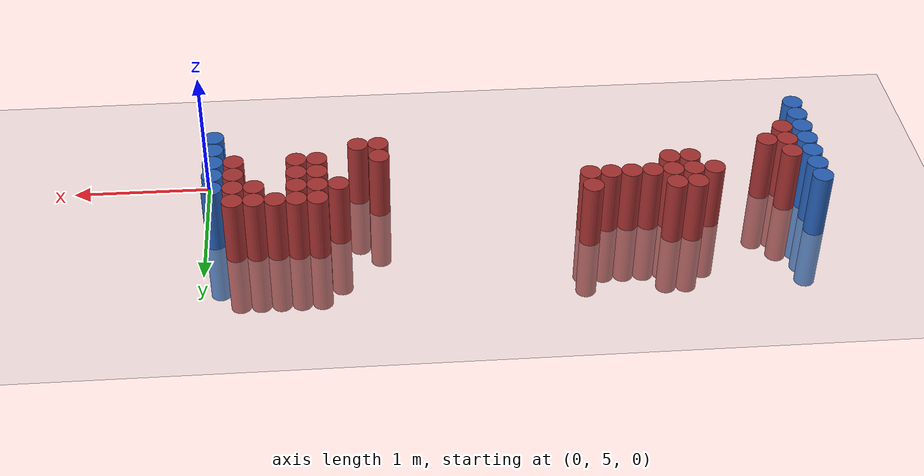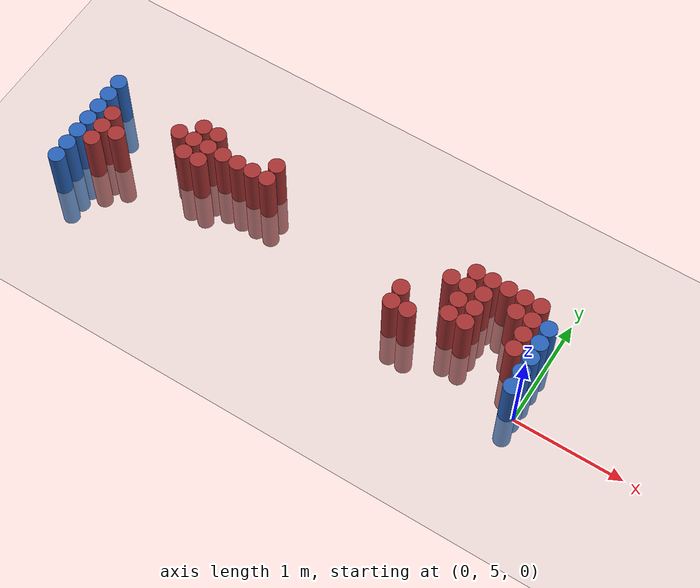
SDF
<sdf version="1.6">
 <world name="default">
  <model name="ground_plane">
   <static>1</static>
   <link name="link">
    <collision name="collision">
     <geometry><plane><normal>0 0 1</normal><size>100 100</size></plane></geometry>
     <surface><friction><ode><mu>100</mu><mu2>50</mu2></ode></friction></surface>
    </collision>
    <visual name="visual">
     <cast_shadows>0</cast_shadows>
     <geometry><plane><normal>0 0 1</normal><size>100 100</size></plane></geometry>
     <material>
      <script><uri>file://media/materials/scripts/gazebo.material</uri><name>Gazebo/Grey</name></script>
     </material>
    </visual>
   </link>
  </model>
  <model name="unit_cylinder_93">
   <static>1</static>
   <pose>-4.425000 4.875000 0.000000 0.000000 0.000000 0.000000</pose>
   <link name="link">
    <inertial>
     <mass>1</mass>
     <inertia><ixx>0.145833</ixx><ixy>0</ixy><ixz>0</ixz><iyy>0.145833</iyy><iyz>0</iyz><izz>0.125</izz></inertia>
    </inertial>
    <collision name="collision">
     <geometry><cylinder><radius>0.075000</radius><length>1</length></cylinder></geometry>
    </collision>
    <visual name="visual">
     <geometry><cylinder><radius>0.075000</radius><length>1</length></cylinder></geometry>
     <material>
      <ambient>0.152000 0.379000 0.720000 1</ambient>
      <diffuse>0.152000 0.379000 0.720000 1</diffuse>
     </material>
     <material>
      <script><name>Gazebo/Grey</name><uri>file://media/materials/scripts/gazebo.material</uri></script>
     </material>
    </visual>
   </link>
  </model>
  <model name="unit_cylinder_94">
   <static>1</static>
   <pose>-0.075000 5.025000 0.000000 0.000000 0.000000 0.000000</pose>
   <link name="link">
    <inertial>
     <mass>1</mass>
     <inertia><ixx>0.145833</ixx><ixy>0</ixy><ixz>0</ixz><iyy>0.145833</iyy><iyz>0</iyz><izz>0.125</izz></inertia>
    </inertial>
    <collision name="collision">
     <geometry><cylinder><radius>0.075000</radius><length>1</length></cylinder></geometry>
    </collision>
    <visual name="visual">
     <geometry><cylinder><radius>0.075000</radius><length>1</length></cylinder></geometry>
     <material>
      <ambient>0.152000 0.379000 0.720000 1</ambient>
      <diffuse>0.152000 0.379000 0.720000 1</diffuse>
     </material>
     <material>
      <script><name>Gazebo/Grey</name><uri>file://media/materials/scripts/gazebo.material</uri></script>
     </material>
    </visual>
   </link>
  </model>
  <model name="unit_cylinder_95">
   <static>1</static>
   <pose>-4.425000 5.025000 0.000000 0.000000 0.000000 0.000000</pose>
   <link name="link">
    <inertial>
     <mass>1</mass>
     <inertia><ixx>0.145833</ixx><ixy>0</ixy><ixz>0</ixz><iyy>0.145833</iyy><iyz>0</iyz><izz>0.125</izz></inertia>
    </inertial>
    <collision name="collision">
     <geometry><cylinder><radius>0.075000</radius><length>1</length></cylinder></geometry>
    </collision>
    <visual name="visual">
     <geometry><cylinder><radius>0.075000</radius><length>1</length></cylinder></geometry>
     <material>
      <ambient>0.152000 0.379000 0.720000 1</ambient>
      <diffuse>0.152000 0.379000 0.720000 1</diffuse>
     </material>
     <material>
      <script><name>Gazebo/Grey</name><uri>file://media/materials/scripts/gazebo.material</uri></script>
     </material>
    </visual>
   </link>
  </model>
  <model name="unit_cylinder_96">
   <static>1</static>
   <pose>-4.425000 5.175000 0.000000 0.000000 0.000000 0.000000</pose>
   <link name="link">
    <inertial>
     <mass>1</mass>
     <inertia><ixx>0.145833</ixx><ixy>0</ixy><ixz>0</ixz><iyy>0.145833</iyy><iyz>0</iyz><izz>0.125</izz></inertia>
    </inertial>
    <collision name="collision">
     <geometry><cylinder><radius>0.075000</radius><length>1</length></cylinder></geometry>
    </collision>
    <visual name="visual">
     <geometry><cylinder><radius>0.075000</radius><length>1</length></cylinder></geometry>
     <material>
      <ambient>0.152000 0.379000 0.720000 1</ambient>
      <diffuse>0.152000 0.379000 0.720000 1</diffuse>
     </material>
     <material>
      <script><name>Gazebo/Grey</name><uri>file://media/materials/scripts/gazebo.material</uri></script>
     </material>
    </visual>
   </link>
  </model>
  <model name="unit_cylinder_97">
   <static>1</static>
   <pose>-4.425000 5.325000 0.000000 0.000000 0.000000 0.000000</pose>
   <link name="link">
    <inertial>
     <mass>1</mass>
     <inertia><ixx>0.145833</ixx><ixy>0</ixy><ixz>0</ixz><iyy>0.145833</iyy><iyz>0</iyz><izz>0.125</izz></inertia>
    </inertial>
    <collision name="collision">
     <geometry><cylinder><radius>0.075000</radius><length>1</length></cylinder></geometry>
    </collision>
    <visual name="visual">
     <geometry><cylinder><radius>0.075000</radius><length>1</length></cylinder></geometry>
     <material>
      <ambient>0.152000 0.379000 0.720000 1</ambient>
      <diffuse>0.152000 0.379000 0.720000 1</diffuse>
     </material>
     <material>
      <script><name>Gazebo/Grey</name><uri>file://media/materials/scripts/gazebo.material</uri></script>
     </material>
    </visual>
   </link>
  </model>
  <model name="unit_cylinder_98">
   <static>1</static>
   <pose>-4.425000 5.475000 0.000000 0.000000 0.000000 0.000000</pose>
   <link name="link">
    <inertial>
     <mass>1</mass>
     <inertia><ixx>0.145833</ixx><ixy>0</ixy><ixz>0</ixz><iyy>0.145833</iyy><iyz>0</iyz><izz>0.125</izz></inertia>
    </inertial>
    <collision name="collision">
     <geometry><cylinder><radius>0.075000</radius><length>1</length></cylinder></geometry>
    </collision>
    <visual name="visual">
     <geometry><cylinder><radius>0.075000</radius><length>1</length></cylinder></geometry>
     <material>
      <ambient>0.152000 0.379000 0.720000 1</ambient>
      <diffuse>0.152000 0.379000 0.720000 1</diffuse>
     </material>
     <material>
      <script><name>Gazebo/Grey</name><uri>file://media/materials/scripts/gazebo.material</uri></script>
     </material>
    </visual>
   </link>
  </model>
  <model name="unit_cylinder_99">
   <static>1</static>
   <pose>-4.425000 5.625000 0.000000 0.000000 0.000000 0.000000</pose>
   <link name="link">
    <inertial>
     <mass>1</mass>
     <inertia><ixx>0.145833</ixx><ixy>0</ixy><ixz>0</ixz><iyy>0.145833</iyy><iyz>0</iyz><izz>0.125</izz></inertia>
    </inertial>
    <collision name="collision">
     <geometry><cylinder><radius>0.075000</radius><length>1</length></cylinder></geometry>
    </collision>
    <visual name="visual">
     <geometry><cylinder><radius>0.075000</radius><length>1</length></cylinder></geometry>
     <material>
      <ambient>0.152000 0.379000 0.720000 1</ambient>
      <diffuse>0.152000 0.379000 0.720000 1</diffuse>
     </material>
     <material>
      <script><name>Gazebo/Grey</name><uri>file://media/materials/scripts/gazebo.material</uri></script>
     </material>
    </visual>
   </link>
  </model>
  <model name="unit_cylinder_100">
   <static>1</static>
   <pose>-4.425000 5.775000 0.000000 0.000000 0.000000 0.000000</pose>
   <link name="link">
    <inertial>
     <mass>1</mass>
     <inertia><ixx>0.145833</ixx><ixy>0</ixy><ixz>0</ixz><iyy>0.145833</iyy><iyz>0</iyz><izz>0.125</izz></inertia>
    </inertial>
    <collision name="collision">
     <geometry><cylinder><radius>0.075000</radius><length>1</length></cylinder></geometry>
    </collision>
    <visual name="visual">
     <geometry><cylinder><radius>0.075000</radius><length>1</length></cylinder></geometry>
     <material>
      <ambient>0.152000 0.379000 0.720000 1</ambient>
      <diffuse>0.152000 0.379000 0.720000 1</diffuse>
     </material>
     <material>
      <script><name>Gazebo/Grey</name><uri>file://media/materials/scripts/gazebo.material</uri></script>
     </material>
    </visual>
   </link>
  </model>
  <model name="unit_cylinder_126">
   <static>1</static>
   <pose>-4.275000 5.175000 0.000000 0.000000 0.000000 0.000000</pose>
   <link name="link">
    <inertial>
     <mass>1</mass>
     <inertia><ixx>0.145833</ixx><ixy>0</ixy><ixz>0</ixz><iyy>0.145833</iyy><iyz>0</iyz><izz>0.125</izz></inertia>
    </inertial>
    <collision name="collision">
     <geometry><cylinder><radius>0.075000</radius><length>1</length></cylinder></geometry>
    </collision>
    <visual name="visual">
     <geometry><cylinder><radius>0.075000</radius><length>1</length></cylinder></geometry>
     <material>
      <ambient>0.648000 0.192000 0.192000 1</ambient>
      <diffuse>0.648000 0.192000 0.192000 1</diffuse>
     </material>
     <material>
      <script><name>Gazebo/Grey</name><uri>file://media/materials/scripts/gazebo.material</uri></script>
     </material>
    </visual>
   </link>
  </model>
  <model name="unit_cylinder_127">
   <static>1</static>
   <pose>-4.275000 5.325000 0.000000 0.000000 0.000000 0.000000</pose>
   <link name="link">
    <inertial>
     <mass>1</mass>
     <inertia><ixx>0.145833</ixx><ixy>0</ixy><ixz>0</ixz><iyy>0.145833</iyy><iyz>0</iyz><izz>0.125</izz></inertia>
    </inertial>
    <collision name="collision">
     <geometry><cylinder><radius>0.075000</radius><length>1</length></cylinder></geometry>
    </collision>
    <visual name="visual">
     <geometry><cylinder><radius>0.075000</radius><length>1</length></cylinder></geometry>
     <material>
      <ambient>0.648000 0.192000 0.192000 1</ambient>
      <diffuse>0.648000 0.192000 0.192000 1</diffuse>
     </material>
     <material>
      <script><name>Gazebo/Grey</name><uri>file://media/materials/scripts/gazebo.material</uri></script>
     </material>
    </visual>
   </link>
  </model>
  <model name="unit_cylinder_128">
   <static>1</static>
   <pose>-4.275000 5.475000 0.000000 0.000000 0.000000 0.000000</pose>
   <link name="link">
    <inertial>
     <mass>1</mass>
     <inertia><ixx>0.145833</ixx><ixy>0</ixy><ixz>0</ixz><iyy>0.145833</iyy><iyz>0</iyz><izz>0.125</izz></inertia>
    </inertial>
    <collision name="collision">
     <geometry><cylinder><radius>0.075000</radius><length>1</length></cylinder></geometry>
    </collision>
    <visual name="visual">
     <geometry><cylinder><radius>0.075000</radius><length>1</length></cylinder></geometry>
     <material>
      <ambient>0.648000 0.192000 0.192000 1</ambient>
      <diffuse>0.648000 0.192000 0.192000 1</diffuse>
     </material>
     <material>
      <script><name>Gazebo/Grey</name><uri>file://media/materials/scripts/gazebo.material</uri></script>
     </material>
    </visual>
   </link>
  </model>
  <model name="unit_cylinder_139">
   <static>1</static>
   <pose>-4.125000 5.325000 0.000000 0.000000 0.000000 0.000000</pose>
   <link name="link">
    <inertial>
     <mass>1</mass>
     <inertia><ixx>0.145833</ixx><ixy>0</ixy><ixz>0</ixz><iyy>0.145833</iyy><iyz>0</iyz><izz>0.125</izz></inertia>
    </inertial>
    <collision name="collision">
     <geometry><cylinder><radius>0.075000</radius><length>1</length></cylinder></geometry>
    </collision>
    <visual name="visual">
     <geometry><cylinder><radius>0.075000</radius><length>1</length></cylinder></geometry>
     <material>
      <ambient>0.648000 0.192000 0.192000 1</ambient>
      <diffuse>0.648000 0.192000 0.192000 1</diffuse>
     </material>
     <material>
      <script><name>Gazebo/Grey</name><uri>file://media/materials/scripts/gazebo.material</uri></script>
     </material>
    </visual>
   </link>
  </model>
  <model name="unit_cylinder_153">
   <static>1</static>
   <pose>-3.675000 5.625000 0.000000 0.000000 0.000000 0.000000</pose>
   <link name="link">
    <inertial>
     <mass>1</mass>
     <inertia><ixx>0.145833</ixx><ixy>0</ixy><ixz>0</ixz><iyy>0.145833</iyy><iyz>0</iyz><izz>0.125</izz></inertia>
    </inertial>
    <collision name="collision">
     <geometry><cylinder><radius>0.075000</radius><length>1</length></cylinder></geometry>
    </collision>
    <visual name="visual">
     <geometry><cylinder><radius>0.075000</radius><length>1</length></cylinder></geometry>
     <material>
      <ambient>0.648000 0.192000 0.192000 1</ambient>
      <diffuse>0.648000 0.192000 0.192000 1</diffuse>
     </material>
     <material>
      <script><name>Gazebo/Grey</name><uri>file://media/materials/scripts/gazebo.material</uri></script>
     </material>
    </visual>
   </link>
  </model>
  <model name="unit_cylinder_158">
   <static>1</static>
   <pose>-3.525000 5.475000 0.000000 0.000000 0.000000 0.000000</pose>
   <link name="link">
    <inertial>
     <mass>1</mass>
     <inertia><ixx>0.145833</ixx><ixy>0</ixy><ixz>0</ixz><iyy>0.145833</iyy><iyz>0</iyz><izz>0.125</izz></inertia>
    </inertial>
    <collision name="collision">
     <geometry><cylinder><radius>0.075000</radius><length>1</length></cylinder></geometry>
    </collision>
    <visual name="visual">
     <geometry><cylinder><radius>0.075000</radius><length>1</length></cylinder></geometry>
     <material>
      <ambient>0.648000 0.192000 0.192000 1</ambient>
      <diffuse>0.648000 0.192000 0.192000 1</diffuse>
     </material>
     <material>
      <script><name>Gazebo/Grey</name><uri>file://media/materials/scripts/gazebo.material</uri></script>
     </material>
    </visual>
   </link>
  </model>
  <model name="unit_cylinder_159">
   <static>1</static>
   <pose>-3.525000 5.625000 0.000000 0.000000 0.000000 0.000000</pose>
   <link name="link">
    <inertial>
     <mass>1</mass>
     <inertia><ixx>0.145833</ixx><ixy>0</ixy><ixz>0</ixz><iyy>0.145833</iyy><iyz>0</iyz><izz>0.125</izz></inertia>
    </inertial>
    <collision name="collision">
     <geometry><cylinder><radius>0.075000</radius><length>1</length></cylinder></geometry>
    </collision>
    <visual name="visual">
     <geometry><cylinder><radius>0.075000</radius><length>1</length></cylinder></geometry>
     <material>
      <ambient>0.648000 0.192000 0.192000 1</ambient>
      <diffuse>0.648000 0.192000 0.192000 1</diffuse>
     </material>
     <material>
      <script><name>Gazebo/Grey</name><uri>file://media/materials/scripts/gazebo.material</uri></script>
     </material>
    </visual>
   </link>
  </model>
  <model name="unit_cylinder_160">
   <static>1</static>
   <pose>-3.525000 5.775000 0.000000 0.000000 0.000000 0.000000</pose>
   <link name="link">
    <inertial>
     <mass>1</mass>
     <inertia><ixx>0.145833</ixx><ixy>0</ixy><ixz>0</ixz><iyy>0.145833</iyy><iyz>0</iyz><izz>0.125</izz></inertia>
    </inertial>
    <collision name="collision">
     <geometry><cylinder><radius>0.075000</radius><length>1</length></cylinder></geometry>
    </collision>
    <visual name="visual">
     <geometry><cylinder><radius>0.075000</radius><length>1</length></cylinder></geometry>
     <material>
      <ambient>0.648000 0.192000 0.192000 1</ambient>
      <diffuse>0.648000 0.192000 0.192000 1</diffuse>
     </material>
     <material>
      <script><name>Gazebo/Grey</name><uri>file://media/materials/scripts/gazebo.material</uri></script>
     </material>
    </visual>
   </link>
  </model>
  <model name="unit_cylinder_164">
   <static>1</static>
   <pose>-3.375000 5.475000 0.000000 0.000000 0.000000 0.000000</pose>
   <link name="link">
    <inertial>
     <mass>1</mass>
     <inertia><ixx>0.145833</ixx><ixy>0</ixy><ixz>0</ixz><iyy>0.145833</iyy><iyz>0</iyz><izz>0.125</izz></inertia>
    </inertial>
    <collision name="collision">
     <geometry><cylinder><radius>0.075000</radius><length>1</length></cylinder></geometry>
    </collision>
    <visual name="visual">
     <geometry><cylinder><radius>0.075000</radius><length>1</length></cylinder></geometry>
     <material>
      <ambient>0.648000 0.192000 0.192000 1</ambient>
      <diffuse>0.648000 0.192000 0.192000 1</diffuse>
     </material>
     <material>
      <script><name>Gazebo/Grey</name><uri>file://media/materials/scripts/gazebo.material</uri></script>
     </material>
    </visual>
   </link>
  </model>
  <model name="unit_cylinder_165">
   <static>1</static>
   <pose>-3.375000 5.625000 0.000000 0.000000 0.000000 0.000000</pose>
   <link name="link">
    <inertial>
     <mass>1</mass>
     <inertia><ixx>0.145833</ixx><ixy>0</ixy><ixz>0</ixz><iyy>0.145833</iyy><iyz>0</iyz><izz>0.125</izz></inertia>
    </inertial>
    <collision name="collision">
     <geometry><cylinder><radius>0.075000</radius><length>1</length></cylinder></geometry>
    </collision>
    <visual name="visual">
     <geometry><cylinder><radius>0.075000</radius><length>1</length></cylinder></geometry>
     <material>
      <ambient>0.648000 0.192000 0.192000 1</ambient>
      <diffuse>0.648000 0.192000 0.192000 1</diffuse>
     </material>
     <material>
      <script><name>Gazebo/Grey</name><uri>file://media/materials/scripts/gazebo.material</uri></script>
     </material>
    </visual>
   </link>
  </model>
  <model name="unit_cylinder_166">
   <static>1</static>
   <pose>-3.375000 5.775000 0.000000 0.000000 0.000000 0.000000</pose>
   <link name="link">
    <inertial>
     <mass>1</mass>
     <inertia><ixx>0.145833</ixx><ixy>0</ixy><ixz>0</ixz><iyy>0.145833</iyy><iyz>0</iyz><izz>0.125</izz></inertia>
    </inertial>
    <collision name="collision">
     <geometry><cylinder><radius>0.075000</radius><length>1</length></cylinder></geometry>
    </collision>
    <visual name="visual">
     <geometry><cylinder><radius>0.075000</radius><length>1</length></cylinder></geometry>
     <material>
      <ambient>0.648000 0.192000 0.192000 1</ambient>
      <diffuse>0.648000 0.192000 0.192000 1</diffuse>
     </material>
     <material>
      <script><name>Gazebo/Grey</name><uri>file://media/materials/scripts/gazebo.material</uri></script>
     </material>
    </visual>
   </link>
  </model>
  <model name="unit_cylinder_171">
   <static>1</static>
   <pose>-3.225000 5.625000 0.000000 0.000000 0.000000 0.000000</pose>
   <link name="link">
    <inertial>
     <mass>1</mass>
     <inertia><ixx>0.145833</ixx><ixy>0</ixy><ixz>0</ixz><iyy>0.145833</iyy><iyz>0</iyz><izz>0.125</izz></inertia>
    </inertial>
    <collision name="collision">
     <geometry><cylinder><radius>0.075000</radius><length>1</length></cylinder></geometry>
    </collision>
    <visual name="visual">
     <geometry><cylinder><radius>0.075000</radius><length>1</length></cylinder></geometry>
     <material>
      <ambient>0.648000 0.192000 0.192000 1</ambient>
      <diffuse>0.648000 0.192000 0.192000 1</diffuse>
     </material>
     <material>
      <script><name>Gazebo/Grey</name><uri>file://media/materials/scripts/gazebo.material</uri></script>
     </material>
    </visual>
   </link>
  </model>
  <model name="unit_cylinder_174">
   <static>1</static>
   <pose>-3.075000 5.625000 0.000000 0.000000 0.000000 0.000000</pose>
   <link name="link">
    <inertial>
     <mass>1</mass>
     <inertia><ixx>0.145833</ixx><ixy>0</ixy><ixz>0</ixz><iyy>0.145833</iyy><iyz>0</iyz><izz>0.125</izz></inertia>
    </inertial>
    <collision name="collision">
     <geometry><cylinder><radius>0.075000</radius><length>1</length></cylinder></geometry>
    </collision>
    <visual name="visual">
     <geometry><cylinder><radius>0.075000</radius><length>1</length></cylinder></geometry>
     <material>
      <ambient>0.648000 0.192000 0.192000 1</ambient>
      <diffuse>0.648000 0.192000 0.192000 1</diffuse>
     </material>
     <material>
      <script><name>Gazebo/Grey</name><uri>file://media/materials/scripts/gazebo.material</uri></script>
     </material>
    </visual>
   </link>
  </model>
  <model name="unit_cylinder_179">
   <static>1</static>
   <pose>-2.925000 5.625000 0.000000 0.000000 0.000000 0.000000</pose>
   <link name="link">
    <inertial>
     <mass>1</mass>
     <inertia><ixx>0.145833</ixx><ixy>0</ixy><ixz>0</ixz><iyy>0.145833</iyy><iyz>0</iyz><izz>0.125</izz></inertia>
    </inertial>
    <collision name="collision">
     <geometry><cylinder><radius>0.075000</radius><length>1</length></cylinder></geometry>
    </collision>
    <visual name="visual">
     <geometry><cylinder><radius>0.075000</radius><length>1</length></cylinder></geometry>
     <material>
      <ambient>0.648000 0.192000 0.192000 1</ambient>
      <diffuse>0.648000 0.192000 0.192000 1</diffuse>
     </material>
     <material>
      <script><name>Gazebo/Grey</name><uri>file://media/materials/scripts/gazebo.material</uri></script>
     </material>
    </visual>
   </link>
  </model>
  <model name="unit_cylinder_190">
   <static>1</static>
   <pose>-2.775000 5.625000 0.000000 0.000000 0.000000 0.000000</pose>
   <link name="link">
    <inertial>
     <mass>1</mass>
     <inertia><ixx>0.145833</ixx><ixy>0</ixy><ixz>0</ixz><iyy>0.145833</iyy><iyz>0</iyz><izz>0.125</izz></inertia>
    </inertial>
    <collision name="collision">
     <geometry><cylinder><radius>0.075000</radius><length>1</length></cylinder></geometry>
    </collision>
    <visual name="visual">
     <geometry><cylinder><radius>0.075000</radius><length>1</length></cylinder></geometry>
     <material>
      <ambient>0.648000 0.192000 0.192000 1</ambient>
      <diffuse>0.648000 0.192000 0.192000 1</diffuse>
     </material>
     <material>
      <script><name>Gazebo/Grey</name><uri>file://media/materials/scripts/gazebo.material</uri></script>
     </material>
    </visual>
   </link>
  </model>
  <model name="unit_cylinder_191">
   <static>1</static>
   <pose>-2.775000 5.775000 0.000000 0.000000 0.000000 0.000000</pose>
   <link name="link">
    <inertial>
     <mass>1</mass>
     <inertia><ixx>0.145833</ixx><ixy>0</ixy><ixz>0</ixz><iyy>0.145833</iyy><iyz>0</iyz><izz>0.125</izz></inertia>
    </inertial>
    <collision name="collision">
     <geometry><cylinder><radius>0.075000</radius><length>1</length></cylinder></geometry>
    </collision>
    <visual name="visual">
     <geometry><cylinder><radius>0.075000</radius><length>1</length></cylinder></geometry>
     <material>
      <ambient>0.648000 0.192000 0.192000 1</ambient>
      <diffuse>0.648000 0.192000 0.192000 1</diffuse>
     </material>
     <material>
      <script><name>Gazebo/Grey</name><uri>file://media/materials/scripts/gazebo.material</uri></script>
     </material>
    </visual>
   </link>
  </model>
  <model name="unit_cylinder_252">
   <static>1</static>
   <pose>-1.275000 5.175000 0.000000 0.000000 0.000000 0.000000</pose>
   <link name="link">
    <inertial>
     <mass>1</mass>
     <inertia><ixx>0.145833</ixx><ixy>0</ixy><ixz>0</ixz><iyy>0.145833</iyy><iyz>0</iyz><izz>0.125</izz></inertia>
    </inertial>
    <collision name="collision">
     <geometry><cylinder><radius>0.075000</radius><length>1</length></cylinder></geometry>
    </collision>
    <visual name="visual">
     <geometry><cylinder><radius>0.075000</radius><length>1</length></cylinder></geometry>
     <material>
      <ambient>0.648000 0.192000 0.192000 1</ambient>
      <diffuse>0.648000 0.192000 0.192000 1</diffuse>
     </material>
     <material>
      <script><name>Gazebo/Grey</name><uri>file://media/materials/scripts/gazebo.material</uri></script>
     </material>
    </visual>
   </link>
  </model>
  <model name="unit_cylinder_253">
   <static>1</static>
   <pose>-1.275000 5.325000 0.000000 0.000000 0.000000 0.000000</pose>
   <link name="link">
    <inertial>
     <mass>1</mass>
     <inertia><ixx>0.145833</ixx><ixy>0</ixy><ixz>0</ixz><iyy>0.145833</iyy><iyz>0</iyz><izz>0.125</izz></inertia>
    </inertial>
    <collision name="collision">
     <geometry><cylinder><radius>0.075000</radius><length>1</length></cylinder></geometry>
    </collision>
    <visual name="visual">
     <geometry><cylinder><radius>0.075000</radius><length>1</length></cylinder></geometry>
     <material>
      <ambient>0.648000 0.192000 0.192000 1</ambient>
      <diffuse>0.648000 0.192000 0.192000 1</diffuse>
     </material>
     <material>
      <script><name>Gazebo/Grey</name><uri>file://media/materials/scripts/gazebo.material</uri></script>
     </material>
    </visual>
   </link>
  </model>
  <model name="unit_cylinder_258">
   <static>1</static>
   <pose>-1.125000 5.175000 0.000000 0.000000 0.000000 0.000000</pose>
   <link name="link">
    <inertial>
     <mass>1</mass>
     <inertia><ixx>0.145833</ixx><ixy>0</ixy><ixz>0</ixz><iyy>0.145833</iyy><iyz>0</iyz><izz>0.125</izz></inertia>
    </inertial>
    <collision name="collision">
     <geometry><cylinder><radius>0.075000</radius><length>1</length></cylinder></geometry>
    </collision>
    <visual name="visual">
     <geometry><cylinder><radius>0.075000</radius><length>1</length></cylinder></geometry>
     <material>
      <ambient>0.648000 0.192000 0.192000 1</ambient>
      <diffuse>0.648000 0.192000 0.192000 1</diffuse>
     </material>
     <material>
      <script><name>Gazebo/Grey</name><uri>file://media/materials/scripts/gazebo.material</uri></script>
     </material>
    </visual>
   </link>
  </model>
  <model name="unit_cylinder_259">
   <static>1</static>
   <pose>-0.975000 5.625000 0.000000 0.000000 0.000000 0.000000</pose>
   <link name="link">
    <inertial>
     <mass>1</mass>
     <inertia><ixx>0.145833</ixx><ixy>0</ixy><ixz>0</ixz><iyy>0.145833</iyy><iyz>0</iyz><izz>0.125</izz></inertia>
    </inertial>
    <collision name="collision">
     <geometry><cylinder><radius>0.075000</radius><length>1</length></cylinder></geometry>
    </collision>
    <visual name="visual">
     <geometry><cylinder><radius>0.075000</radius><length>1</length></cylinder></geometry>
     <material>
      <ambient>0.648000 0.192000 0.192000 1</ambient>
      <diffuse>0.648000 0.192000 0.192000 1</diffuse>
     </material>
     <material>
      <script><name>Gazebo/Grey</name><uri>file://media/materials/scripts/gazebo.material</uri></script>
     </material>
    </visual>
   </link>
  </model>
  <model name="unit_cylinder_262">
   <static>1</static>
   <pose>-0.825000 5.325000 0.000000 0.000000 0.000000 0.000000</pose>
   <link name="link">
    <inertial>
     <mass>1</mass>
     <inertia><ixx>0.145833</ixx><ixy>0</ixy><ixz>0</ixz><iyy>0.145833</iyy><iyz>0</iyz><izz>0.125</izz></inertia>
    </inertial>
    <collision name="collision">
     <geometry><cylinder><radius>0.075000</radius><length>1</length></cylinder></geometry>
    </collision>
    <visual name="visual">
     <geometry><cylinder><radius>0.075000</radius><length>1</length></cylinder></geometry>
     <material>
      <ambient>0.648000 0.192000 0.192000 1</ambient>
      <diffuse>0.648000 0.192000 0.192000 1</diffuse>
     </material>
     <material>
      <script><name>Gazebo/Grey</name><uri>file://media/materials/scripts/gazebo.material</uri></script>
     </material>
    </visual>
   </link>
  </model>
  <model name="unit_cylinder_263">
   <static>1</static>
   <pose>-0.825000 5.475000 0.000000 0.000000 0.000000 0.000000</pose>
   <link name="link">
    <inertial>
     <mass>1</mass>
     <inertia><ixx>0.145833</ixx><ixy>0</ixy><ixz>0</ixz><iyy>0.145833</iyy><iyz>0</iyz><izz>0.125</izz></inertia>
    </inertial>
    <collision name="collision">
     <geometry><cylinder><radius>0.075000</radius><length>1</length></cylinder></geometry>
    </collision>
    <visual name="visual">
     <geometry><cylinder><radius>0.075000</radius><length>1</length></cylinder></geometry>
     <material>
      <ambient>0.648000 0.192000 0.192000 1</ambient>
      <diffuse>0.648000 0.192000 0.192000 1</diffuse>
     </material>
     <material>
      <script><name>Gazebo/Grey</name><uri>file://media/materials/scripts/gazebo.material</uri></script>
     </material>
    </visual>
   </link>
  </model>
  <model name="unit_cylinder_264">
   <static>1</static>
   <pose>-0.825000 5.625000 0.000000 0.000000 0.000000 0.000000</pose>
   <link name="link">
    <inertial>
     <mass>1</mass>
     <inertia><ixx>0.145833</ixx><ixy>0</ixy><ixz>0</ixz><iyy>0.145833</iyy><iyz>0</iyz><izz>0.125</izz></inertia>
    </inertial>
    <collision name="collision">
     <geometry><cylinder><radius>0.075000</radius><length>1</length></cylinder></geometry>
    </collision>
    <visual name="visual">
     <geometry><cylinder><radius>0.075000</radius><length>1</length></cylinder></geometry>
     <material>
      <ambient>0.648000 0.192000 0.192000 1</ambient>
      <diffuse>0.648000 0.192000 0.192000 1</diffuse>
     </material>
     <material>
      <script><name>Gazebo/Grey</name><uri>file://media/materials/scripts/gazebo.material</uri></script>
     </material>
    </visual>
   </link>
  </model>
  <model name="unit_cylinder_265">
   <static>1</static>
   <pose>-0.825000 5.775000 0.000000 0.000000 0.000000 0.000000</pose>
   <link name="link">
    <inertial>
     <mass>1</mass>
     <inertia><ixx>0.145833</ixx><ixy>0</ixy><ixz>0</ixz><iyy>0.145833</iyy><iyz>0</iyz><izz>0.125</izz></inertia>
    </inertial>
    <collision name="collision">
     <geometry><cylinder><radius>0.075000</radius><length>1</length></cylinder></geometry>
    </collision>
    <visual name="visual">
     <geometry><cylinder><radius>0.075000</radius><length>1</length></cylinder></geometry>
     <material>
      <ambient>0.648000 0.192000 0.192000 1</ambient>
      <diffuse>0.648000 0.192000 0.192000 1</diffuse>
     </material>
     <material>
      <script><name>Gazebo/Grey</name><uri>file://media/materials/scripts/gazebo.material</uri></script>
     </material>
    </visual>
   </link>
  </model>
  <model name="unit_cylinder_267">
   <static>1</static>
   <pose>-0.675000 5.325000 0.000000 0.000000 0.000000 0.000000</pose>
   <link name="link">
    <inertial>
     <mass>1</mass>
     <inertia><ixx>0.145833</ixx><ixy>0</ixy><ixz>0</ixz><iyy>0.145833</iyy><iyz>0</iyz><izz>0.125</izz></inertia>
    </inertial>
    <collision name="collision">
     <geometry><cylinder><radius>0.075000</radius><length>1</length></cylinder></geometry>
    </collision>
    <visual name="visual">
     <geometry><cylinder><radius>0.075000</radius><length>1</length></cylinder></geometry>
     <material>
      <ambient>0.648000 0.192000 0.192000 1</ambient>
      <diffuse>0.648000 0.192000 0.192000 1</diffuse>
     </material>
     <material>
      <script><name>Gazebo/Grey</name><uri>file://media/materials/scripts/gazebo.material</uri></script>
     </material>
    </visual>
   </link>
  </model>
  <model name="unit_cylinder_268">
   <static>1</static>
   <pose>-0.675000 5.475000 0.000000 0.000000 0.000000 0.000000</pose>
   <link name="link">
    <inertial>
     <mass>1</mass>
     <inertia><ixx>0.145833</ixx><ixy>0</ixy><ixz>0</ixz><iyy>0.145833</iyy><iyz>0</iyz><izz>0.125</izz></inertia>
    </inertial>
    <collision name="collision">
     <geometry><cylinder><radius>0.075000</radius><length>1</length></cylinder></geometry>
    </collision>
    <visual name="visual">
     <geometry><cylinder><radius>0.075000</radius><length>1</length></cylinder></geometry>
     <material>
      <ambient>0.648000 0.192000 0.192000 1</ambient>
      <diffuse>0.648000 0.192000 0.192000 1</diffuse>
     </material>
     <material>
      <script><name>Gazebo/Grey</name><uri>file://media/materials/scripts/gazebo.material</uri></script>
     </material>
    </visual>
   </link>
  </model>
  <model name="unit_cylinder_269">
   <static>1</static>
   <pose>-0.675000 5.625000 0.000000 0.000000 0.000000 0.000000</pose>
   <link name="link">
    <inertial>
     <mass>1</mass>
     <inertia><ixx>0.145833</ixx><ixy>0</ixy><ixz>0</ixz><iyy>0.145833</iyy><iyz>0</iyz><izz>0.125</izz></inertia>
    </inertial>
    <collision name="collision">
     <geometry><cylinder><radius>0.075000</radius><length>1</length></cylinder></geometry>
    </collision>
    <visual name="visual">
     <geometry><cylinder><radius>0.075000</radius><length>1</length></cylinder></geometry>
     <material>
      <ambient>0.648000 0.192000 0.192000 1</ambient>
      <diffuse>0.648000 0.192000 0.192000 1</diffuse>
     </material>
     <material>
      <script><name>Gazebo/Grey</name><uri>file://media/materials/scripts/gazebo.material</uri></script>
     </material>
    </visual>
   </link>
  </model>
  <model name="unit_cylinder_270">
   <static>1</static>
   <pose>-0.675000 5.775000 0.000000 0.000000 0.000000 0.000000</pose>
   <link name="link">
    <inertial>
     <mass>1</mass>
     <inertia><ixx>0.145833</ixx><ixy>0</ixy><ixz>0</ixz><iyy>0.145833</iyy><iyz>0</iyz><izz>0.125</izz></inertia>
    </inertial>
    <collision name="collision">
     <geometry><cylinder><radius>0.075000</radius><length>1</length></cylinder></geometry>
    </collision>
    <visual name="visual">
     <geometry><cylinder><radius>0.075000</radius><length>1</length></cylinder></geometry>
     <material>
      <ambient>0.648000 0.192000 0.192000 1</ambient>
      <diffuse>0.648000 0.192000 0.192000 1</diffuse>
     </material>
     <material>
      <script><name>Gazebo/Grey</name><uri>file://media/materials/scripts/gazebo.material</uri></script>
     </material>
    </visual>
   </link>
  </model>
  <model name="unit_cylinder_272">
   <static>1</static>
   <pose>-0.525000 5.775000 0.000000 0.000000 0.000000 0.000000</pose>
   <link name="link">
    <inertial>
     <mass>1</mass>
     <inertia><ixx>0.145833</ixx><ixy>0</ixy><ixz>0</ixz><iyy>0.145833</iyy><iyz>0</iyz><izz>0.125</izz></inertia>
    </inertial>
    <collision name="collision">
     <geometry><cylinder><radius>0.075000</radius><length>1</length></cylinder></geometry>
    </collision>
    <visual name="visual">
     <geometry><cylinder><radius>0.075000</radius><length>1</length></cylinder></geometry>
     <material>
      <ambient>0.648000 0.192000 0.192000 1</ambient>
      <diffuse>0.648000 0.192000 0.192000 1</diffuse>
     </material>
     <material>
      <script><name>Gazebo/Grey</name><uri>file://media/materials/scripts/gazebo.material</uri></script>
     </material>
    </visual>
   </link>
  </model>
  <model name="unit_cylinder_274">
   <static>1</static>
   <pose>-0.375000 5.625000 0.000000 0.000000 0.000000 0.000000</pose>
   <link name="link">
    <inertial>
     <mass>1</mass>
     <inertia><ixx>0.145833</ixx><ixy>0</ixy><ixz>0</ixz><iyy>0.145833</iyy><iyz>0</iyz><izz>0.125</izz></inertia>
    </inertial>
    <collision name="collision">
     <geometry><cylinder><radius>0.075000</radius><length>1</length></cylinder></geometry>
    </collision>
    <visual name="visual">
     <geometry><cylinder><radius>0.075000</radius><length>1</length></cylinder></geometry>
     <material>
      <ambient>0.648000 0.192000 0.192000 1</ambient>
      <diffuse>0.648000 0.192000 0.192000 1</diffuse>
     </material>
     <material>
      <script><name>Gazebo/Grey</name><uri>file://media/materials/scripts/gazebo.material</uri></script>
     </material>
    </visual>
   </link>
  </model>
  <model name="unit_cylinder_275">
   <static>1</static>
   <pose>-0.375000 5.775000 0.000000 0.000000 0.000000 0.000000</pose>
   <link name="link">
    <inertial>
     <mass>1</mass>
     <inertia><ixx>0.145833</ixx><ixy>0</ixy><ixz>0</ixz><iyy>0.145833</iyy><iyz>0</iyz><izz>0.125</izz></inertia>
    </inertial>
    <collision name="collision">
     <geometry><cylinder><radius>0.075000</radius><length>1</length></cylinder></geometry>
    </collision>
    <visual name="visual">
     <geometry><cylinder><radius>0.075000</radius><length>1</length></cylinder></geometry>
     <material>
      <ambient>0.648000 0.192000 0.192000 1</ambient>
      <diffuse>0.648000 0.192000 0.192000 1</diffuse>
     </material>
     <material>
      <script><name>Gazebo/Grey</name><uri>file://media/materials/scripts/gazebo.material</uri></script>
     </material>
    </visual>
   </link>
  </model>
  <model name="unit_cylinder_280">
   <static>1</static>
   <pose>-0.225000 5.325000 0.000000 0.000000 0.000000 0.000000</pose>
   <link name="link">
    <inertial>
     <mass>1</mass>
     <inertia><ixx>0.145833</ixx><ixy>0</ixy><ixz>0</ixz><iyy>0.145833</iyy><iyz>0</iyz><izz>0.125</izz></inertia>
    </inertial>
    <collision name="collision">
     <geometry><cylinder><radius>0.075000</radius><length>1</length></cylinder></geometry>
    </collision>
    <visual name="visual">
     <geometry><cylinder><radius>0.075000</radius><length>1</length></cylinder></geometry>
     <material>
      <ambient>0.648000 0.192000 0.192000 1</ambient>
      <diffuse>0.648000 0.192000 0.192000 1</diffuse>
     </material>
     <material>
      <script><name>Gazebo/Grey</name><uri>file://media/materials/scripts/gazebo.material</uri></script>
     </material>
    </visual>
   </link>
  </model>
  <model name="unit_cylinder_281">
   <static>1</static>
   <pose>-0.225000 5.475000 0.000000 0.000000 0.000000 0.000000</pose>
   <link name="link">
    <inertial>
     <mass>1</mass>
     <inertia><ixx>0.145833</ixx><ixy>0</ixy><ixz>0</ixz><iyy>0.145833</iyy><iyz>0</iyz><izz>0.125</izz></inertia>
    </inertial>
    <collision name="collision">
     <geometry><cylinder><radius>0.075000</radius><length>1</length></cylinder></geometry>
    </collision>
    <visual name="visual">
     <geometry><cylinder><radius>0.075000</radius><length>1</length></cylinder></geometry>
     <material>
      <ambient>0.648000 0.192000 0.192000 1</ambient>
      <diffuse>0.648000 0.192000 0.192000 1</diffuse>
     </material>
     <material>
      <script><name>Gazebo/Grey</name><uri>file://media/materials/scripts/gazebo.material</uri></script>
     </material>
    </visual>
   </link>
  </model>
  <model name="unit_cylinder_282">
   <static>1</static>
   <pose>-0.225000 5.625000 0.000000 0.000000 0.000000 0.000000</pose>
   <link name="link">
    <inertial>
     <mass>1</mass>
     <inertia><ixx>0.145833</ixx><ixy>0</ixy><ixz>0</ixz><iyy>0.145833</iyy><iyz>0</iyz><izz>0.125</izz></inertia>
    </inertial>
    <collision name="collision">
     <geometry><cylinder><radius>0.075000</radius><length>1</length></cylinder></geometry>
    </collision>
    <visual name="visual">
     <geometry><cylinder><radius>0.075000</radius><length>1</length></cylinder></geometry>
     <material>
      <ambient>0.648000 0.192000 0.192000 1</ambient>
      <diffuse>0.648000 0.192000 0.192000 1</diffuse>
     </material>
     <material>
      <script><name>Gazebo/Grey</name><uri>file://media/materials/scripts/gazebo.material</uri></script>
     </material>
    </visual>
   </link>
  </model>
  <model name="unit_cylinder_283">
   <static>1</static>
   <pose>-0.225000 5.775000 0.000000 0.000000 0.000000 0.000000</pose>
   <link name="link">
    <inertial>
     <mass>1</mass>
     <inertia><ixx>0.145833</ixx><ixy>0</ixy><ixz>0</ixz><iyy>0.145833</iyy><iyz>0</iyz><izz>0.125</izz></inertia>
    </inertial>
    <collision name="collision">
     <geometry><cylinder><radius>0.075000</radius><length>1</length></cylinder></geometry>
    </collision>
    <visual name="visual">
     <geometry><cylinder><radius>0.075000</radius><length>1</length></cylinder></geometry>
     <material>
      <ambient>0.648000 0.192000 0.192000 1</ambient>
      <diffuse>0.648000 0.192000 0.192000 1</diffuse>
     </material>
     <material>
      <script><name>Gazebo/Grey</name><uri>file://media/materials/scripts/gazebo.material</uri></script>
     </material>
    </visual>
   </link>
  </model>
  <model name="unit_cylinder_298">
   <static>1</static>
   <pose>-0.075000 5.175000 0.000000 0.000000 0.000000 0.000000</pose>
   <link name="link">
    <inertial>
     <mass>1</mass>
     <inertia><ixx>0.145833</ixx><ixy>0</ixy><ixz>0</ixz><iyy>0.145833</iyy><iyz>0</iyz><izz>0.125</izz></inertia>
    </inertial>
    <collision name="collision">
     <geometry><cylinder><radius>0.075000</radius><length>1</length></cylinder></geometry>
    </collision>
    <visual name="visual">
     <geometry><cylinder><radius>0.075000</radius><length>1</length></cylinder></geometry>
     <material>
      <ambient>0.152000 0.379000 0.720000 1</ambient>
      <diffuse>0.152000 0.379000 0.720000 1</diffuse>
     </material>
     <material>
      <script><name>Gazebo/Grey</name><uri>file://media/materials/scripts/gazebo.material</uri></script>
     </material>
    </visual>
   </link>
  </model>
  <model name="unit_cylinder_299">
   <static>1</static>
   <pose>-0.075000 5.325000 0.000000 0.000000 0.000000 0.000000</pose>
   <link name="link">
    <inertial>
     <mass>1</mass>
     <inertia><ixx>0.145833</ixx><ixy>0</ixy><ixz>0</ixz><iyy>0.145833</iyy><iyz>0</iyz><izz>0.125</izz></inertia>
    </inertial>
    <collision name="collision">
     <geometry><cylinder><radius>0.075000</radius><length>1</length></cylinder></geometry>
    </collision>
    <visual name="visual">
     <geometry><cylinder><radius>0.075000</radius><length>1</length></cylinder></geometry>
     <material>
      <ambient>0.152000 0.379000 0.720000 1</ambient>
      <diffuse>0.152000 0.379000 0.720000 1</diffuse>
     </material>
     <material>
      <script><name>Gazebo/Grey</name><uri>file://media/materials/scripts/gazebo.material</uri></script>
     </material>
    </visual>
   </link>
  </model>
  <model name="unit_cylinder_300">
   <static>1</static>
   <pose>-0.075000 5.475000 0.000000 0.000000 0.000000 0.000000</pose>
   <link name="link">
    <inertial>
     <mass>1</mass>
     <inertia><ixx>0.145833</ixx><ixy>0</ixy><ixz>0</ixz><iyy>0.145833</iyy><iyz>0</iyz><izz>0.125</izz></inertia>
    </inertial>
    <collision name="collision">
     <geometry><cylinder><radius>0.075000</radius><length>1</length></cylinder></geometry>
    </collision>
    <visual name="visual">
     <geometry><cylinder><radius>0.075000</radius><length>1</length></cylinder></geometry>
     <material>
      <ambient>0.152000 0.379000 0.720000 1</ambient>
      <diffuse>0.152000 0.379000 0.720000 1</diffuse>
     </material>
     <material>
      <script><name>Gazebo/Grey</name><uri>file://media/materials/scripts/gazebo.material</uri></script>
     </material>
    </visual>
   </link>
  </model>
  <model name="unit_cylinder_301">
   <static>1</static>
   <pose>-0.075000 5.625000 0.000000 0.000000 0.000000 0.000000</pose>
   <link name="link">
    <inertial>
     <mass>1</mass>
     <inertia><ixx>0.145833</ixx><ixy>0</ixy><ixz>0</ixz><iyy>0.145833</iyy><iyz>0</iyz><izz>0.125</izz></inertia>
    </inertial>
    <collision name="collision">
     <geometry><cylinder><radius>0.075000</radius><length>1</length></cylinder></geometry>
    </collision>
    <visual name="visual">
     <geometry><cylinder><radius>0.075000</radius><length>1</length></cylinder></geometry>
     <material>
      <ambient>0.152000 0.379000 0.720000 1</ambient>
      <diffuse>0.152000 0.379000 0.720000 1</diffuse>
     </material>
     <material>
      <script><name>Gazebo/Grey</name><uri>file://media/materials/scripts/gazebo.material</uri></script>
     </material>
    </visual>
   </link>
  </model>
 </world>
</sdf>
